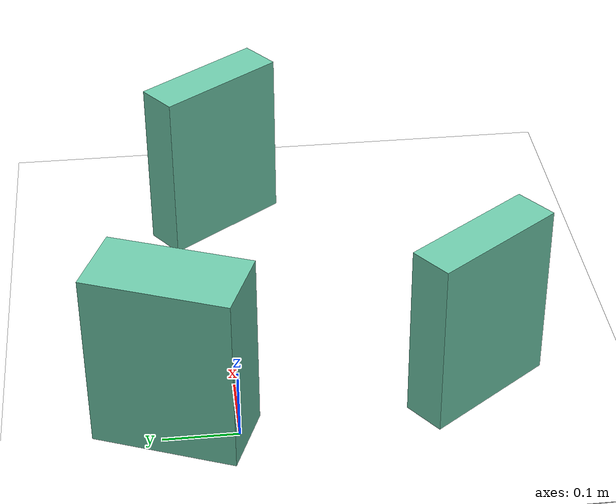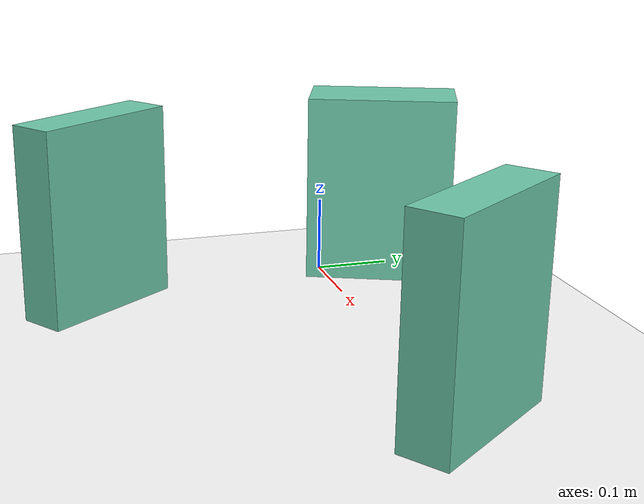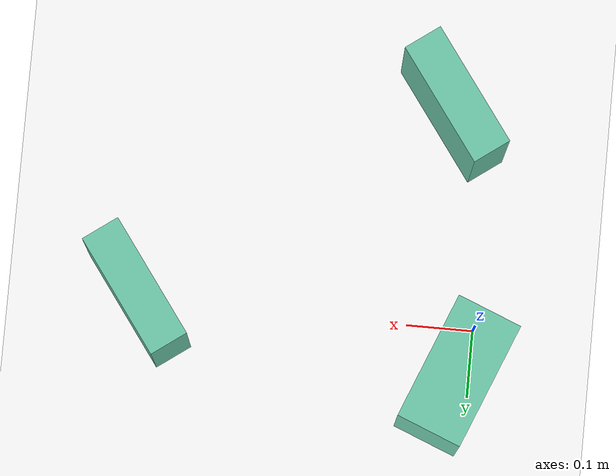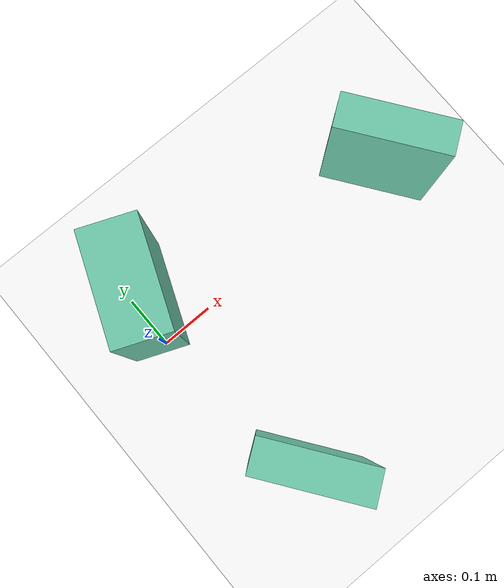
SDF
<?xml version="1.0" ?>
<sdf version="1.4">
  <world name="default">
    <gui>
      <camera name="user_camera">
        <pose>0 0 2.5 0 1.5708 -3.1415</pose>
      </camera>
    </gui>
    <scene>
      <ambient>0.5 0.5 0.5 1.0</ambient>
      <shadows>0</shadows>
    </scene>
    <include>
      <uri>model://ground_plane</uri>
    </include>
    <include>
      <uri>model://sun</uri>
    </include>
    <include>
      <uri>model://racetrack17</uri>
      <name>race_track17</name>
      <pose>0 0 0 0 0 0</pose>
    </include>

    <model name='obstacle1'>
    <pose frame=''>0.06 -0.32 0 0 0 5.3407075111</pose>
    <link name='Wall_0'>
      <collision name='Wall_0_Collision'>
        <geometry>
          <box>
            <size>0.195 0.06 0.25</size>
          </box>
        </geometry>
        <pose frame=''>0 0 0.125 0 -0 0</pose>
      </collision>
      <visual name='Wall_0_Visual'>
        <pose frame=''>0 0 0.125 0 -0 0</pose>
        <geometry>
          <box>
            <size>0.195 0.06 0.25</size>
          </box>
        </geometry>
        <material>
          <script>
            <uri>file://media/materials/scripts/gazebo.material</uri>
            <name>Gazebo/Grey</name>
          </script>
          <ambient>0.435294 0.796078 0.67451 1</ambient>
        </material>
        <meta>
          <layer>0</layer>
        </meta>
      </visual>
      <pose frame=''>0 0 0 0 -0 0</pose>
    </link>
    <static>1</static>
  </model>

    <model name='obstacle2'>
    <pose frame=''>0.0225 0.08 0 0 -0 1.1868238914</pose>
    <link name='Wall_0'>
      <collision name='Wall_0_Collision'>
        <geometry>
          <box>
            <size>0.195 0.1 0.25</size>
          </box>
        </geometry>
        <pose frame=''>0 0 0.125 0 -0 0</pose>
      </collision>
      <visual name='Wall_0_Visual'>
        <pose frame=''>0 0 0.125 0 -0 0</pose>
        <geometry>
          <box>
            <size>0.195 0.1 0.25</size>
          </box>
        </geometry>
        <material>
          <script>
            <uri>file://media/materials/scripts/gazebo.material</uri>
            <name>Gazebo/Grey</name>
          </script>
          <ambient>0.435294 0.796078 0.67451 1</ambient>
        </material>
        <meta>
          <layer>0</layer>
        </meta>
      </visual>
      <pose frame=''>0 0 0 0 -0 0</pose>
    </link>
    <static>1</static>
  </model>

  <model name='obstacle3'>
    <pose frame=''>0.5 0 0 0 0 5.3407075111</pose>
    <link name='Wall_0'>
      <collision name='Wall_0_Collision'>
        <geometry>
          <box>
            <size>0.195 0.06 0.25</size>
          </box>
        </geometry>
        <pose frame=''>0 0 0.125 0 -0 0</pose>
      </collision>
      <visual name='Wall_0_Visual'>
        <pose frame=''>0 0 0.125 0 -0 0</pose>
        <geometry>
          <box>
            <size>0.195 0.06 0.25</size>
          </box>
        </geometry>
        <material>
          <script>
            <uri>file://media/materials/scripts/gazebo.material</uri>
            <name>Gazebo/Grey</name>
          </script>
          <ambient>0.435294 0.796078 0.67451 1</ambient>
        </material>
        <meta>
          <layer>0</layer>
        </meta>
      </visual>
      <pose frame=''>0 0 0 0 -0 0</pose>
    </link>
    <static>1</static>
  </model>

  </world>
</sdf>

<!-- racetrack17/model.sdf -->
<sdf version='1.6'>
  <model name='race_track17'>
    <static>true</static>
    <link name='link'>
      <visual name='visual'>
        <geometry>
          <box>
            <size>1.507 2.739 0.000553</size>
          </box>
        </geometry>
        <material>
          <script>
            <name>RaceTrack17/track17</name>
	    <uri>model://racetrack17/materials/scripts</uri>
            <uri>model://racetrack17/materials/textures</uri>
          </script>
          <ambient>1 1 1 1</ambient>
          <diffuse>1 1 1 1</diffuse>
          <specular>0.01 0.01 0.01 1</specular>
          <emissive>1 1 1 1</emissive>
        </material>
        <transparency>0</transparency>
      </visual>
      <collision name='collision'>
        <geometry>
          <box>
            <size>1.507 2.739 0.000553</size>
          </box>
        </geometry>
	<surface>
          <friction>
            <ode>
              <mu>100</mu>
              <mu2>50</mu2>
            </ode>
          </friction>
        </surface>
      </collision>
    </link>
  </model>
</sdf>
